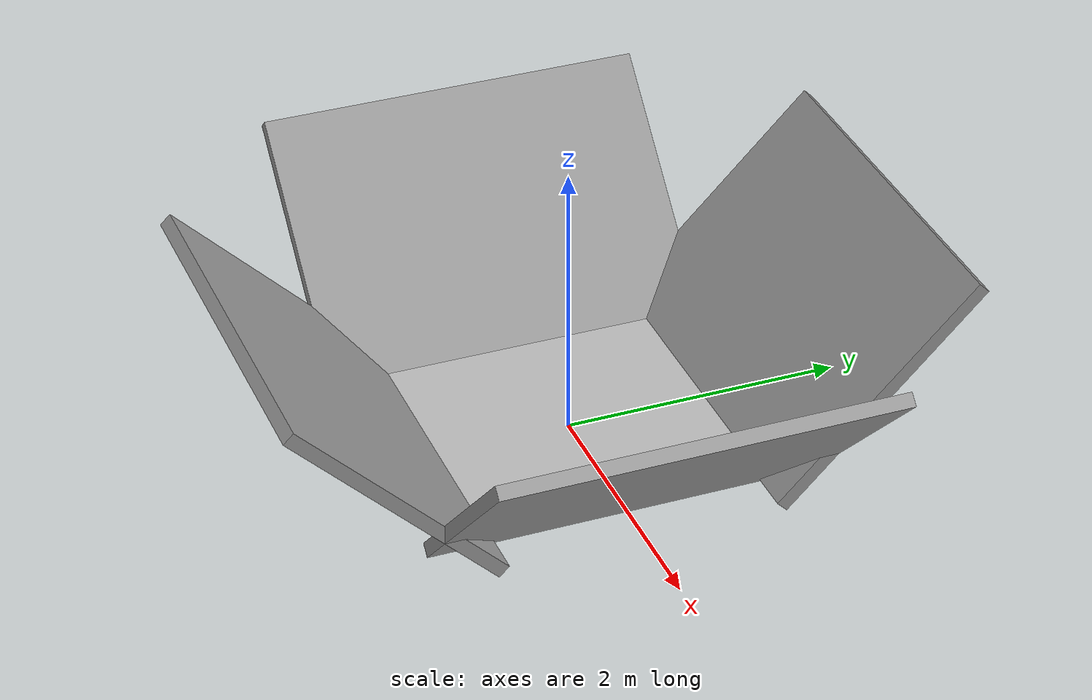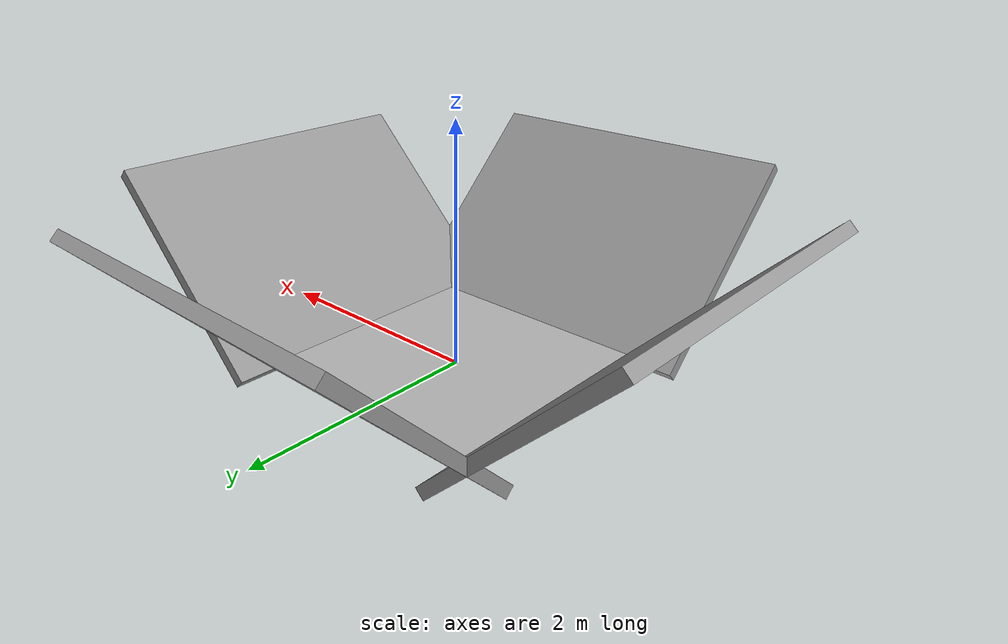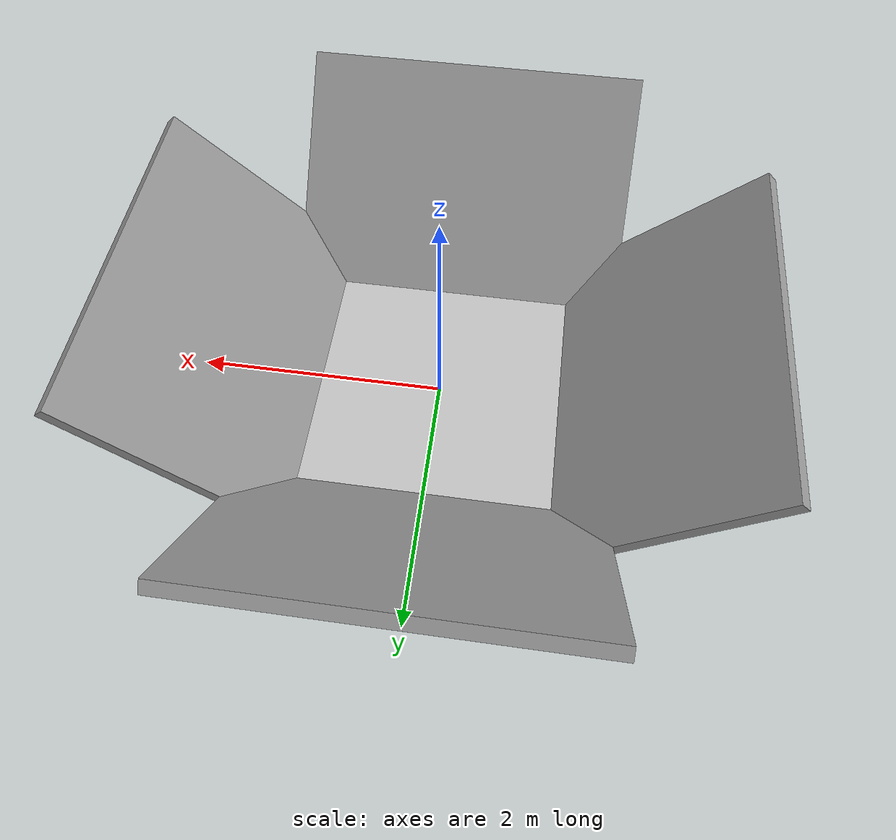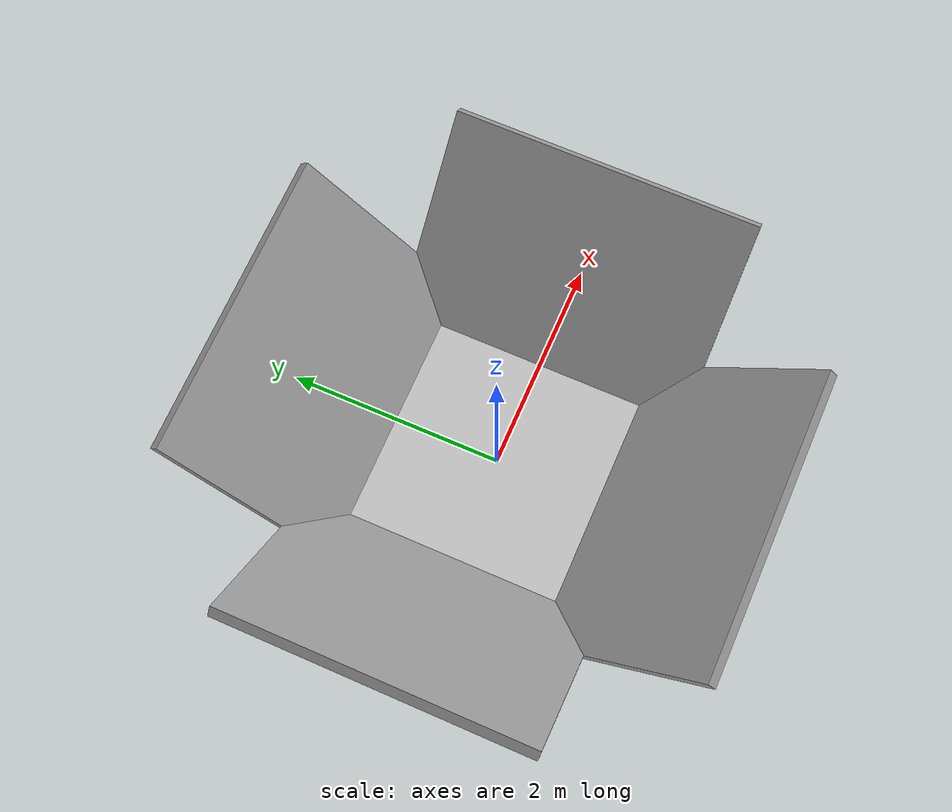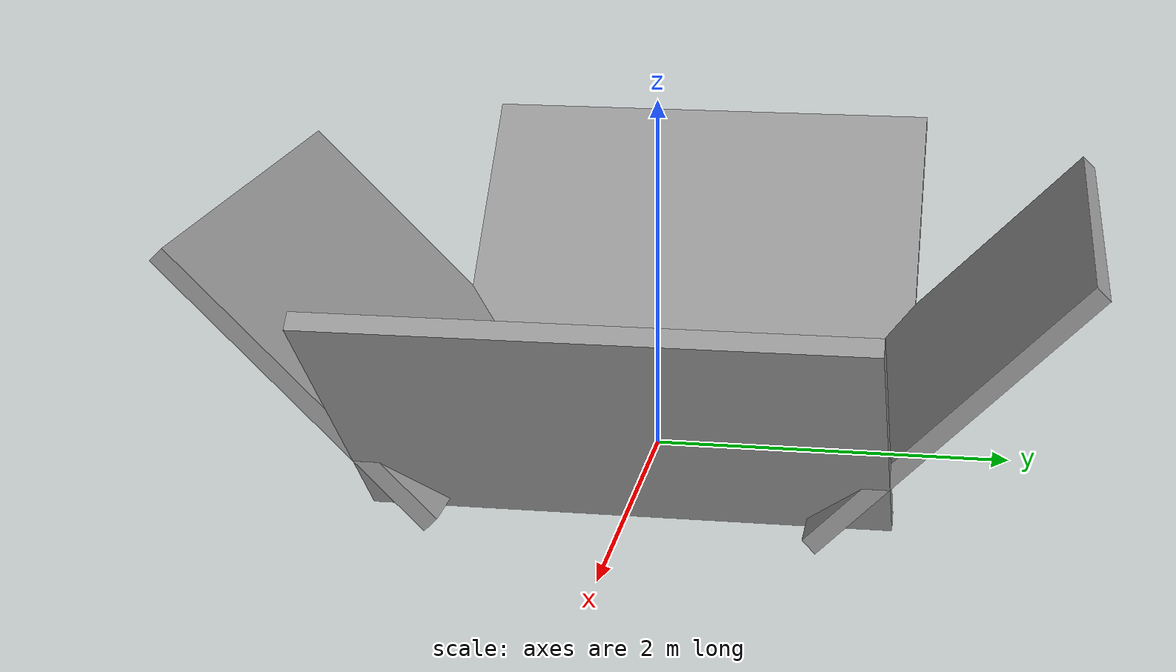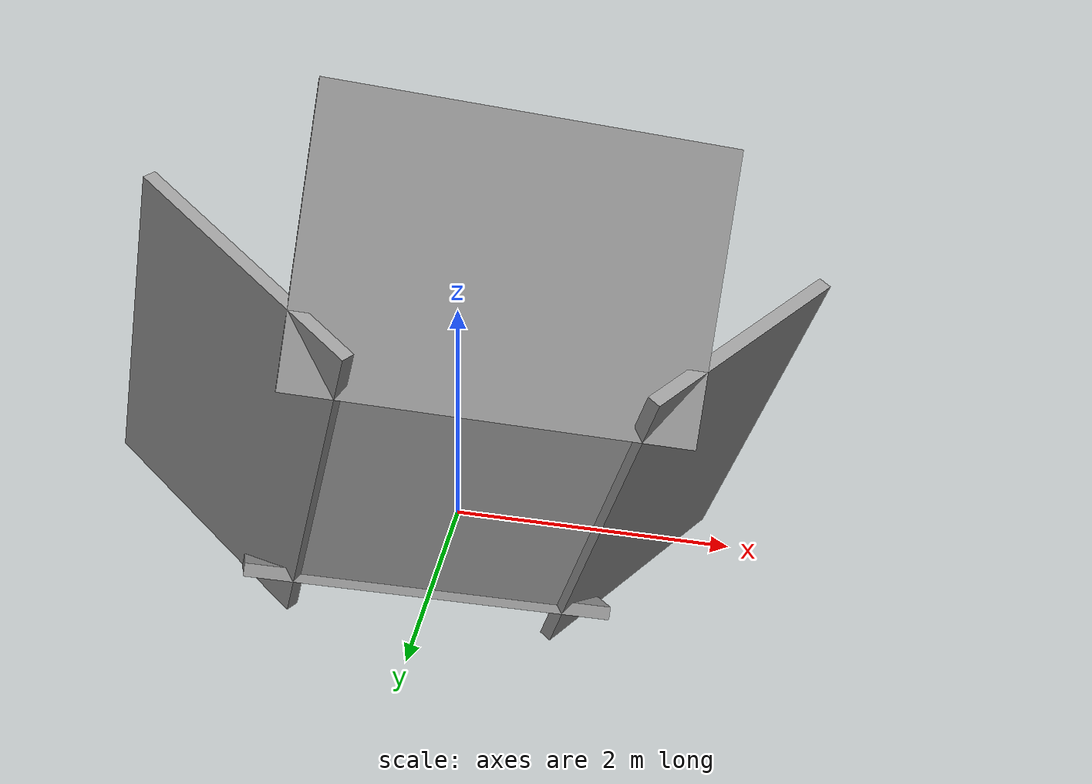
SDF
<?xml version="1.0"?>
<sdf version="1.6">
  <model name="qr_ground_target">
    <static>true</static>
    <link name="target">

      <!-- QR plakası: zeminde düz, üst yüzü yukarı bakar -->
      <visual name="qr_face">
        <pose>0 0 0.03 0 0 0</pose>
        <geometry><box><size>2.0 2.0 0.05</size></box></geometry>
        <material>
          <script>
            <uri>model://qr_plate/materials/scripts</uri>
            <uri>model://qr_plate/materials/textures</uri>
            <name>QrPlate/Diffuse</name>
          </script>
        </material>
      </visual>
      <collision name="qr_c">
        <pose>0 0 0.03 0 0 0</pose>
        <geometry><box><size>2.0 2.0 0.05</size></box></geometry>
      </collision>

      <!-- 4 engel: her biri 45° dışa doğru eğik, QR'ın kenarında (huni ağzı yukarı) -->
      <visual name="wall_yp">
        <pose>0 1.7 0.7 -0.785 0 0</pose>
        <geometry><box><size>2.8 0.1 2.0</size></box></geometry>
        <material><ambient>0.55 0.55 0.55 1</ambient><diffuse>0.6 0.6 0.6 1</diffuse></material>
      </visual>
      <visual name="wall_yn">
        <pose>0 -1.7 0.7 0.785 0 0</pose>
        <geometry><box><size>2.8 0.1 2.0</size></box></geometry>
        <material><ambient>0.55 0.55 0.55 1</ambient><diffuse>0.6 0.6 0.6 1</diffuse></material>
      </visual>
      <visual name="wall_xp">
        <pose>1.7 0 0.7 0 0.785 0</pose>
        <geometry><box><size>0.1 2.8 2.0</size></box></geometry>
        <material><ambient>0.55 0.55 0.55 1</ambient><diffuse>0.6 0.6 0.6 1</diffuse></material>
      </visual>
      <visual name="wall_xn">
        <pose>-1.7 0 0.7 0 -0.785 0</pose>
        <geometry><box><size>0.1 2.8 2.0</size></box></geometry>
        <material><ambient>0.55 0.55 0.55 1</ambient><diffuse>0.6 0.6 0.6 1</diffuse></material>
      </visual>

    </link>
  </model>
</sdf>
